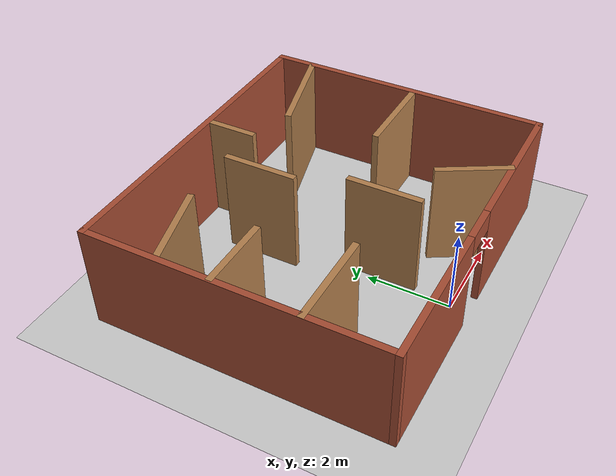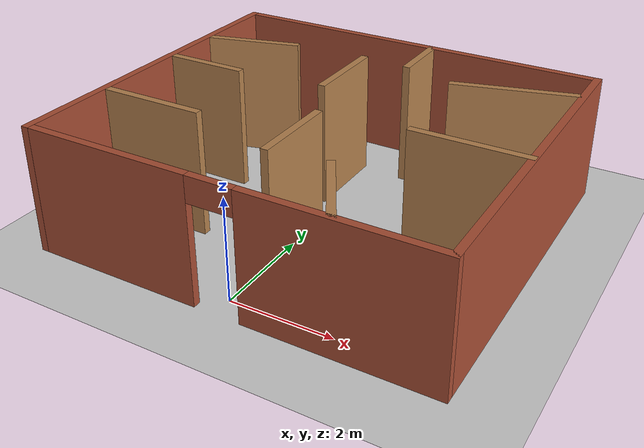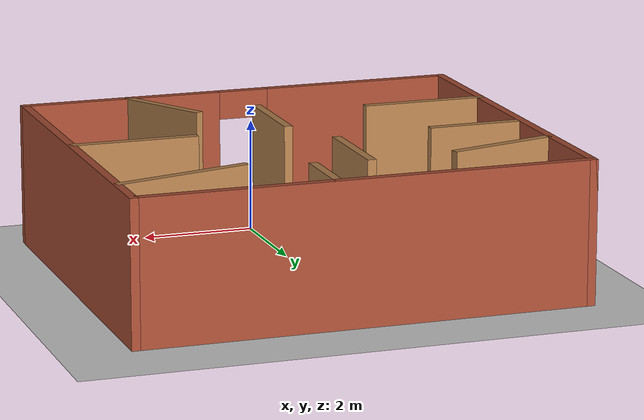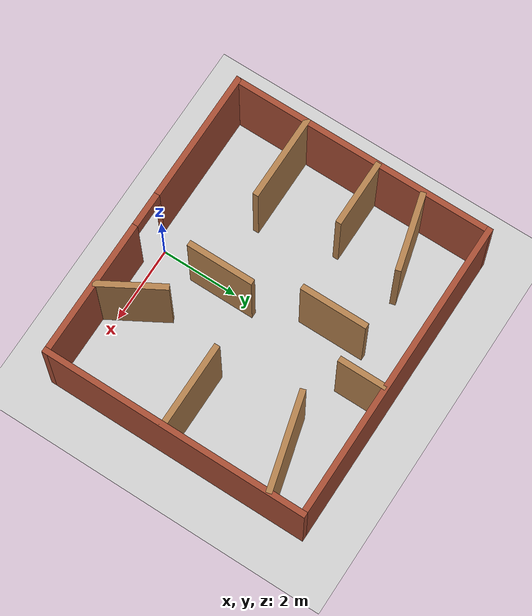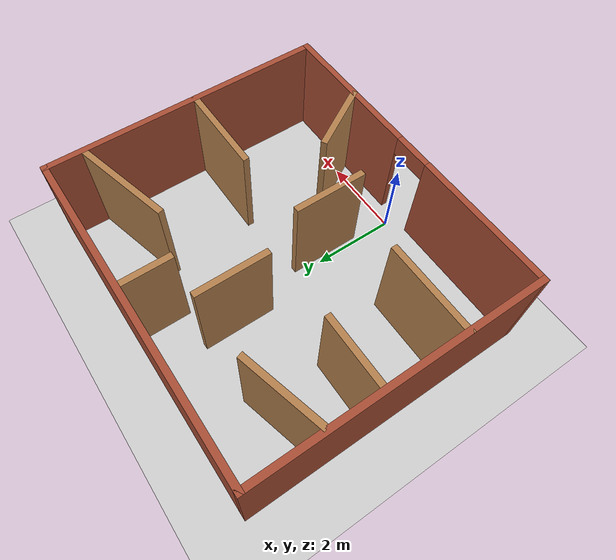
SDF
<sdf version="1.7">
 <world name="default">
  <light name="sun" type="directional">
   <pose>0 0 10 0 -0 0</pose>
   <diffuse>0.8 0.8 0.8 1</diffuse>
   <specular>0.2 0.2 0.2 1</specular>
   <attenuation>
    <range>1000</range>
    <constant>0.9</constant>
    <linear>0.01</linear>
    <quadratic>0.001</quadratic>
   </attenuation>
   <direction>-0.5 0.1 -0.9</direction>
   <spot><inner_angle>0</inner_angle><outer_angle>0</outer_angle><falloff>0</falloff></spot>
  </light>
  <model name="ground_plane">
   <static>1</static>
   <link name="link">
    <collision name="collision">
     <geometry><plane><normal>0 0 1</normal><size>100 100</size></plane></geometry>
     <surface>
      <contact><collide_bitmask>65535</collide_bitmask></contact>
      <friction><ode><mu>100</mu><mu2>50</mu2></ode></friction>
     </surface>
    </collision>
    <visual name="visual">
     <cast_shadows>0</cast_shadows>
     <geometry><plane><normal>0 0 1</normal><size>100 100</size></plane></geometry>
     <material>
      <script><uri>file://media/materials/scripts/gazebo.material</uri><name>Gazebo/Grey</name></script>
     </material>
    </visual>
   </link>
  </model>
  <gravity>0 0 -9.8</gravity>
  <magnetic_field>6e-06 2.3e-05 -4.2e-05</magnetic_field>
  <atmosphere type="adiabatic"/>
  <physics type="ode">
   <max_step_size>0.001</max_step_size>
   <real_time_factor>1</real_time_factor>
   <real_time_update_rate>1000</real_time_update_rate>
  </physics>
  <scene><ambient>0.4 0.4 0.4 1</ambient><background>0.7 0.7 0.7 1</background><shadows>1</shadows></scene>
  <spherical_coordinates>
   <surface_model>EARTH_WGS84</surface_model>
   <latitude_deg>0</latitude_deg>
   <longitude_deg>0</longitude_deg>
   <elevation>0</elevation>
   <heading_deg>0</heading_deg>
  </spherical_coordinates>
  <model name="vinay.world">
   <pose>0.130535 3.86556 0 0 -0 0</pose>
   <link name="Wall_1">
    <collision name="Wall_1_Collision">
     <geometry><box><size>7 0.15 2.5</size></box></geometry>
     <pose>0 0 1.25 0 -0 0</pose>
    </collision>
    <visual name="Wall_1_Visual">
     <pose>0 0 1.25 0 -0 0</pose>
     <geometry><box><size>7 0.15 2.5</size></box></geometry>
     <material>
      <script><uri>file://media/materials/scripts/gazebo.material</uri><name>Gazebo/Bricks</name></script>
      <ambient>1 1 1 1</ambient>
     </material>
     <meta><layer>0</layer></meta>
    </visual>
    <pose>-3.925 -0.805847 0 0 -0 1.5708</pose>
   </link>
   <link name="Wall_10">
    <collision name="Wall_10_Collision">
     <geometry><box><size>2.25 0.15 2.5</size></box></geometry>
     <pose>0 0 1.25 0 -0 0</pose>
    </collision>
    <visual name="Wall_10_Visual">
     <pose>0 0 1.25 0 -0 0</pose>
     <geometry><box><size>2.25 0.15 2.5</size></box></geometry>
     <material>
      <script><uri>file://media/materials/scripts/gazebo.material</uri><name>Gazebo/Wood</name></script>
      <ambient>1 1 1 1</ambient>
     </material>
     <meta><layer>0</layer></meta>
    </visual>
    <pose>-2.87091 -2.32506 0 0 -0 0</pose>
   </link>
   <link name="Wall_12">
    <collision name="Wall_12_Collision">
     <geometry><box><size>1.75 0.15 2.5</size></box></geometry>
     <pose>0 0 1.25 0 -0 0</pose>
    </collision>
    <visual name="Wall_12_Visual">
     <pose>0 0 1.25 0 -0 0</pose>
     <geometry><box><size>1.75 0.15 2.5</size></box></geometry>
     <material>
      <script><uri>file://media/materials/scripts/gazebo.material</uri><name>Gazebo/Wood</name></script>
      <ambient>1 1 1 1</ambient>
     </material>
     <meta><layer>0</layer></meta>
    </visual>
    <pose>-0.475367 0.6353 0 0 -0 -1.5708</pose>
   </link>
   <link name="Wall_14">
    <collision name="Wall_14_Collision">
     <geometry><box><size>1.75 0.15 2.5</size></box></geometry>
     <pose>0 0 1.25 0 -0 0</pose>
    </collision>
    <visual name="Wall_14_Visual">
     <pose>0 0 1.25 0 -0 0</pose>
     <geometry><box><size>1.75 0.15 2.5</size></box></geometry>
     <material>
      <script><uri>file://media/materials/scripts/gazebo.material</uri><name>Gazebo/Wood</name></script>
      <ambient>1 1 1 1</ambient>
     </material>
     <meta><layer>0</layer></meta>
    </visual>
    <pose>0.049334 -2.09315 0 0 -0 -1.5708</pose>
   </link>
   <link name="Wall_17">
    <collision name="Wall_17_Collision">
     <geometry><box><size>1.75 0.15 2.5</size></box></geometry>
     <pose>0 0 1.25 0 -0 0</pose>
    </collision>
    <visual name="Wall_17_Visual">
     <pose>0 0 1.25 0 -0 0</pose>
     <geometry><box><size>1.75 0.15 2.5</size></box></geometry>
     <material>
      <script><uri>file://media/materials/scripts/gazebo.material</uri><name>Gazebo/Wood</name></script>
      <ambient>1 1 1 1</ambient>
     </material>
     <meta><layer>0</layer></meta>
    </visual>
    <pose>1.60822 -3.50368 0 0 -0 2.0944</pose>
   </link>
   <link name="Wall_19">
    <collision name="Wall_19_Collision">
     <geometry><box><size>2.5 0.15 2.5</size></box></geometry>
     <pose>0 0 1.25 0 -0 0</pose>
    </collision>
    <visual name="Wall_19_Visual">
     <pose>0 0 1.25 0 -0 0</pose>
     <geometry><box><size>2.5 0.15 2.5</size></box></geometry>
     <material>
      <script><uri>file://media/materials/scripts/gazebo.material</uri><name>Gazebo/Wood</name></script>
      <ambient>1 1 1 1</ambient>
     </material>
     <meta><layer>0</layer></meta>
    </visual>
    <pose>2.7447 1.41103 0 0 -0 -2.87979</pose>
   </link>
   <link name="Wall_2">
    <collision name="Wall_2_Collision">
     <geometry><box><size>8 0.15 2.5</size></box></geometry>
     <pose>0 0 1.25 0 -0 0</pose>
    </collision>
    <visual name="Wall_2_Visual">
     <pose>0 0 1.25 0 -0 0</pose>
     <geometry><box><size>8 0.15 2.5</size></box></geometry>
     <material>
      <script><uri>file://media/materials/scripts/gazebo.material</uri><name>Gazebo/Bricks</name></script>
      <ambient>1 1 1 1</ambient>
     </material>
     <meta><layer>0</layer></meta>
    </visual>
    <pose>-0 2.61915 0 0 -0 0</pose>
   </link>
   <link name="Wall_21">
    <collision name="Wall_21_Collision">
     <geometry><box><size>2 0.15 2.5</size></box></geometry>
     <pose>0 0 1.25 0 -0 0</pose>
    </collision>
    <visual name="Wall_21_Visual">
     <pose>0 0 1.25 0 -0 0</pose>
     <geometry><box><size>2 0.15 2.5</size></box></geometry>
     <material>
      <script><uri>file://media/materials/scripts/gazebo.material</uri><name>Gazebo/Wood</name></script>
      <ambient>1 1 1 1</ambient>
     </material>
     <meta><layer>0</layer></meta>
    </visual>
    <pose>-2.93998 1.13252 0 0 -0 0.261799</pose>
   </link>
   <link name="Wall_24">
    <collision name="Wall_24_Collision">
     <geometry><box><size>1.25 0.15 2.5</size></box></geometry>
     <pose>0 0 1.25 0 -0 0</pose>
    </collision>
    <visual name="Wall_24_Visual">
     <pose>0 0 1.25 0 -0 0</pose>
     <geometry><box><size>1.25 0.15 2.5</size></box></geometry>
     <material>
      <script><uri>file://media/materials/scripts/gazebo.material</uri><name>Gazebo/Wood</name></script>
      <ambient>1 1 1 1</ambient>
     </material>
     <meta><layer>0</layer></meta>
    </visual>
    <pose>0.504076 2.00466 0 0 -0 -1.5708</pose>
   </link>
   <link name="Wall_3">
    <collision name="Wall_3_Collision">
     <geometry><box><size>7 0.15 2.5</size></box></geometry>
     <pose>0 0 1.25 0 -0 0</pose>
    </collision>
    <visual name="Wall_3_Visual">
     <pose>0 0 1.25 0 -0 0</pose>
     <geometry><box><size>7 0.15 2.5</size></box></geometry>
     <material>
      <script><uri>file://media/materials/scripts/gazebo.material</uri><name>Gazebo/Bricks</name></script>
      <ambient>1 1 1 1</ambient>
     </material>
     <meta><layer>0</layer></meta>
    </visual>
    <pose>3.925 -0.805847 0 0 -0 -1.5708</pose>
   </link>
   <link name="Wall_4">
    <pose>-0 -4.23085 0 0 -0 3.14159</pose>
    <visual name="Wall_4_Visual_0">
     <pose>-2.17971 0 1.25 0 -0 0</pose>
     <geometry><box><size>3.64059 0.15 2.5</size></box></geometry>
     <material>
      <script><uri>file://media/materials/scripts/gazebo.material</uri><name>Gazebo/Bricks</name></script>
      <ambient>1 1 1 1</ambient>
     </material>
     <meta><layer>0</layer></meta>
    </visual>
    <collision name="Wall_4_Collision_0">
     <geometry><box><size>3.64059 0.15 2.5</size></box></geometry>
     <pose>-2.17971 0 1.25 0 -0 0</pose>
    </collision>
    <visual name="Wall_4_Visual_1">
     <pose>2.27029 0 1.25 0 -0 0</pose>
     <geometry><box><size>3.45941 0.15 2.5</size></box></geometry>
     <material>
      <script><uri>file://media/materials/scripts/gazebo.material</uri><name>Gazebo/Bricks</name></script>
      <ambient>1 1 1 1</ambient>
     </material>
     <meta><layer>0</layer></meta>
    </visual>
    <collision name="Wall_4_Collision_1">
     <geometry><box><size>3.45941 0.15 2.5</size></box></geometry>
     <pose>2.27029 0 1.25 0 -0 0</pose>
    </collision>
    <visual name="Wall_4_Visual_2">
     <pose>0.090586 0 2.25 0 -0 0</pose>
     <geometry><box><size>0.9 0.15 0.5</size></box></geometry>
     <material>
      <script><uri>file://media/materials/scripts/gazebo.material</uri><name>Gazebo/Bricks</name></script>
      <ambient>1 1 1 1</ambient>
     </material>
     <meta><layer>0</layer></meta>
    </visual>
    <collision name="Wall_4_Collision_2">
     <geometry><box><size>0.9 0.15 0.5</size></box></geometry>
     <pose>0.090586 0 2.25 0 -0 0</pose>
    </collision>
   </link>
   <link name="Wall_6">
    <collision name="Wall_6_Collision">
     <geometry><box><size>1.75 0.15 2.5</size></box></geometry>
     <pose>0 0 1.25 0 -0 0</pose>
    </collision>
    <visual name="Wall_6_Visual">
     <pose>0 0 1.25 0 -0 0</pose>
     <geometry><box><size>1.75 0.15 2.5</size></box></geometry>
     <material>
      <script><uri>file://media/materials/scripts/gazebo.material</uri><name>Gazebo/Wood</name></script>
      <ambient>1 1 1 1</ambient>
     </material>
     <meta><layer>0</layer></meta>
    </visual>
    <pose>-3.08593 -0.366177 0 0 -0 0</pose>
   </link>
   <link name="Wall_8">
    <collision name="Wall_8_Collision">
     <geometry><box><size>2.25 0.15 2.5</size></box></geometry>
     <pose>0 0 1.25 0 -0 0</pose>
    </collision>
    <visual name="Wall_8_Visual">
     <pose>0 0 1.25 0 -0 0</pose>
     <geometry><box><size>2.25 0.15 2.5</size></box></geometry>
     <material>
      <script><uri>file://media/materials/scripts/gazebo.material</uri><name>Gazebo/Wood</name></script>
      <ambient>1 1 1 1</ambient>
     </material>
     <meta><layer>0</layer></meta>
    </visual>
    <pose>2.84715 -1.08327 0 0 -0 3.14159</pose>
   </link>
   <static>1</static>
  </model>
 </world>
</sdf>
